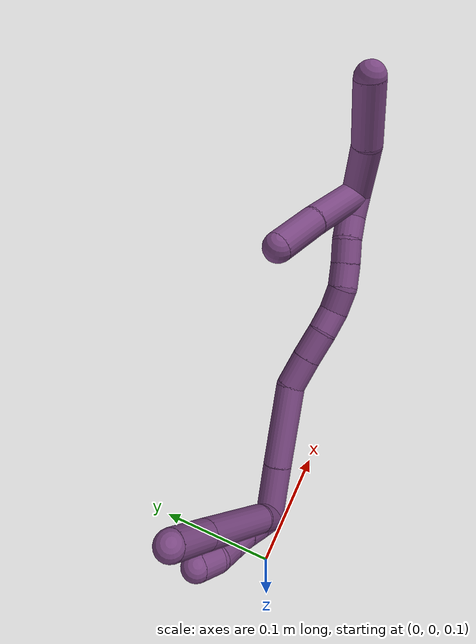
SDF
<sdf version="1.7">
 <world name="default">
  <model name="photoneo_s_sensor">
   <static>1</static>
   <pose>0 0 2 1.57079 1.57079 3.14159</pose>
   <link name="link">
    <inertial><mass>0.1</mass></inertial>
    <sensor name="sensor" type="depth">
     <update_rate>30</update_rate>
     <camera>
      <horizontal_fov>1.22</horizontal_fov>
      <image><width>1920</width><height>1200</height><format>B8G8R8</format></image>
      <clip><near>0.1</near><far>4</far></clip>
      <depth_camera><output>points</output></depth_camera>
     </camera>
     <plugin name="camera_plugin" filename="libgazebo_ros_depth_camera.so">
      <baseline>0.2</baseline>
      <alwaysOn>1</alwaysOn>
      <updateRate>0.0</updateRate>
      <cameraName>camera_ir</cameraName>
      <imageTopicName>/camera/color/image_raw</imageTopicName>
      <cameraInfoTopicName>/camera/color/camera_info</cameraInfoTopicName>
      <depthImageTopicName>/camera/depth/image_raw</depthImageTopicName>
      <depthImageCameraInfoTopicName>/camera/depth/camera_info</depthImageCameraInfoTopicName>
      <pointCloudTopicName>/camera/depth/points</pointCloudTopicName>
      <frameName>fr_optical</frameName>
      <pointCloudCutoff>0.1</pointCloudCutoff>
      <pointCloudCutoffMax>2.0</pointCloudCutoffMax>
      <distortionK1>0</distortionK1>
      <distortionK2>0</distortionK2>
      <distortionK3>0</distortionK3>
      <distortionT1>0</distortionT1>
      <distortionT2>0</distortionT2>
      <CxPrime>0</CxPrime>
      <Cx>0</Cx>
      <Cy>0</Cy>
      <focalLength>0</focalLength>
      <hackBaseline>0</hackBaseline>
     </plugin>
    </sensor>
   </link>
  </model>
  <model name="bin">
   <static>1</static>
   <link name="bottom">
    <collision name="collision-bottom">
     <pose>0 0 -0.01 0 -0 0</pose>
     <geometry><box><size>0.8 0.6 0.02</size></box></geometry>
     <surface>
      <friction><ode><mu>100</mu><mu2>100</mu2></ode></friction>
      <contact><collide_bitmask>65535</collide_bitmask></contact>
     </surface>
    </collision>
   </link>
   <link name="west_wall">
    <collision name="collision-west_wall">
     <pose>-0.41 0 0.1 0 -0 0</pose>
     <geometry><box><size>0.02 0.6 0.2</size></box></geometry>
     <surface>
      <friction><ode><mu>100</mu><mu2>100</mu2></ode></friction>
      <contact><collide_bitmask>65535</collide_bitmask></contact>
     </surface>
    </collision>
   </link>
   <link name="east_wall">
    <collision name="collision-east_wall">
     <pose>0.41 0 0.1 0 -0 0</pose>
     <geometry><box><size>0.02 0.6 0.2</size></box></geometry>
     <surface>
      <friction><ode><mu>100</mu><mu2>100</mu2></ode></friction>
      <contact><collide_bitmask>65535</collide_bitmask></contact>
     </surface>
    </collision>
   </link>
   <link name="south_wall">
    <collision name="collision-south_wall">
     <pose>0 -0.31 0.1 0 -0 0</pose>
     <geometry><box><size>0.8 0.02 0.2</size></box></geometry>
     <surface>
      <friction><ode><mu>100</mu><mu2>100</mu2></ode></friction>
      <contact><collide_bitmask>65535</collide_bitmask></contact>
     </surface>
    </collision>
   </link>
   <link name="north_wall">
    <collision name="collision-north_wall">
     <pose>0 0.31 0.1 0 -0 0</pose>
     <geometry><box><size>0.8 0.02 0.2</size></box></geometry>
     <surface>
      <friction><ode><mu>100</mu><mu2>100</mu2></ode></friction>
      <contact><collide_bitmask>65535</collide_bitmask></contact>
     </surface>
    </collision>
   </link>
  </model>
  <model name="20">
   <static>0</static>
   <link name="20">
    <collision name="collision-cylinder-e_1_2_8">
     <pose>-0.005534 0.005448 0.013054 -0.395387 -0.372891 0.075535</pose>
     <geometry><cylinder><radius>0.0125</radius><length>0.030379</length></cylinder></geometry>
     <surface>
      <friction><ode><mu>1.16</mu><mu2>1.16</mu2><slip1>0</slip1><slip2>0</slip2></ode></friction>
      <contact><ode><kp>1e+06</kp><kd>1</kd><max_vel>0</max_vel><min_depth>0.001</min_depth></ode></contact>
     </surface>
    </collision>
    <visual name="visual-cylinder-e_1_2_8">
     <pose>-0.005534 0.005448 0.013054 -0.395387 -0.372891 0.075535</pose>
     <geometry><cylinder><radius>0.0125</radius><length>0.030379</length></cylinder></geometry>
     <material><ambient>0.478431 0.278431 0.509804 1</ambient></material>
    </visual>
    <collision name="collision-cylinder-e_2_8_9">
     <pose>-0.031074 0.031222 0.053964 -0.630372 -0.525733 0.17503</pose>
     <geometry><cylinder><radius>0.0125</radius><length>0.079732</length></cylinder></geometry>
     <surface>
      <friction><ode><mu>1.16</mu><mu2>1.16</mu2><slip1>0</slip1><slip2>0</slip2></ode></friction>
      <contact><ode><kp>1e+06</kp><kd>1</kd><max_vel>0</max_vel><min_depth>0.001</min_depth></ode></contact>
     </surface>
    </collision>
    <visual name="visual-cylinder-e_2_8_9">
     <pose>-0.031074 0.031222 0.053964 -0.630372 -0.525733 0.17503</pose>
     <geometry><cylinder><radius>0.0125</radius><length>0.079732</length></cylinder></geometry>
     <material><ambient>0.478431 0.278431 0.509804 1</ambient></material>
    </visual>
    <collision name="collision-cylinder-e_3_9_6">
     <pose>-0.061149 0.061517 0.095855 -0.617574 -0.529192 0.172432</pose>
     <geometry><cylinder><radius>0.0125</radius><length>0.039889</length></cylinder></geometry>
     <surface>
      <friction><ode><mu>1.16</mu><mu2>1.16</mu2><slip1>0</slip1><slip2>0</slip2></ode></friction>
      <contact><ode><kp>1e+06</kp><kd>1</kd><max_vel>0</max_vel><min_depth>0.001</min_depth></ode></contact>
     </surface>
    </collision>
    <visual name="visual-cylinder-e_3_9_6">
     <pose>-0.061149 0.061517 0.095855 -0.617574 -0.529192 0.172432</pose>
     <geometry><cylinder><radius>0.0125</radius><length>0.039889</length></cylinder></geometry>
     <material><ambient>0.478431 0.278431 0.509804 1</ambient></material>
    </visual>
    <collision name="collision-cylinder-e_1_2_10">
     <pose>-0.006885 0.004745 0.005485 -0.713166 -0.759383 0.29514</pose>
     <geometry><cylinder><radius>0.0125</radius><length>0.02</length></cylinder></geometry>
     <surface>
      <friction><ode><mu>1.16</mu><mu2>1.16</mu2><slip1>0</slip1><slip2>0</slip2></ode></friction>
      <contact><ode><kp>1e+06</kp><kd>1</kd><max_vel>0</max_vel><min_depth>0.001</min_depth></ode></contact>
     </surface>
    </collision>
    <visual name="visual-cylinder-e_1_2_10">
     <pose>-0.006885 0.004745 0.005485 -0.713166 -0.759383 0.29514</pose>
     <geometry><cylinder><radius>0.0125</radius><length>0.02</length></cylinder></geometry>
     <material><ambient>0.478431 0.278431 0.509804 1</ambient></material>
    </visual>
    <collision name="collision-cylinder-e_2_10_11">
     <pose>-0.0204 0.014314 0.016695 -0.70027 -0.724836 0.275179</pose>
     <geometry><cylinder><radius>0.0125</radius><length>0.02</length></cylinder></geometry>
     <surface>
      <friction><ode><mu>1.16</mu><mu2>1.16</mu2><slip1>0</slip1><slip2>0</slip2></ode></friction>
      <contact><ode><kp>1e+06</kp><kd>1</kd><max_vel>0</max_vel><min_depth>0.001</min_depth></ode></contact>
     </surface>
    </collision>
    <visual name="visual-cylinder-e_2_10_11">
     <pose>-0.0204 0.014314 0.016695 -0.70027 -0.724836 0.275179</pose>
     <geometry><cylinder><radius>0.0125</radius><length>0.02</length></cylinder></geometry>
     <material><ambient>0.478431 0.278431 0.509804 1</ambient></material>
    </visual>
    <collision name="collision-cylinder-e_3_11_12">
     <pose>-0.034938 0.023647 0.026557 -0.82824 -0.912186 0.424764</pose>
     <geometry><cylinder><radius>0.0125</radius><length>0.02</length></cylinder></geometry>
     <surface>
      <friction><ode><mu>1.16</mu><mu2>1.16</mu2><slip1>0</slip1><slip2>0</slip2></ode></friction>
      <contact><ode><kp>1e+06</kp><kd>1</kd><max_vel>0</max_vel><min_depth>0.001</min_depth></ode></contact>
     </surface>
    </collision>
    <visual name="visual-cylinder-e_3_11_12">
     <pose>-0.034938 0.023647 0.026557 -0.82824 -0.912186 0.424764</pose>
     <geometry><cylinder><radius>0.0125</radius><length>0.02</length></cylinder></geometry>
     <material><ambient>0.478431 0.278431 0.509804 1</ambient></material>
    </visual>
    <collision name="collision-cylinder-e_4_12_13">
     <pose>-0.049623 0.031802 0.037082 -0.518781 -0.74457 0.206513</pose>
     <geometry><cylinder><radius>0.0125</radius><length>0.02</length></cylinder></geometry>
     <surface>
      <friction><ode><mu>1.16</mu><mu2>1.16</mu2><slip1>0</slip1><slip2>0</slip2></ode></friction>
      <contact><ode><kp>1e+06</kp><kd>1</kd><max_vel>0</max_vel><min_depth>0.001</min_depth></ode></contact>
     </surface>
    </collision>
    <visual name="visual-cylinder-e_4_12_13">
     <pose>-0.049623 0.031802 0.037082 -0.518781 -0.74457 0.206513</pose>
     <geometry><cylinder><radius>0.0125</radius><length>0.02</length></cylinder></geometry>
     <material><ambient>0.478431 0.278431 0.509804 1</ambient></material>
    </visual>
    <collision name="collision-cylinder-e_5_13_5">
     <pose>-0.062697 0.04178 0.047968 -0.952861 -0.681266 0.361849</pose>
     <geometry><cylinder><radius>0.0125</radius><length>0.02</length></cylinder></geometry>
     <surface>
      <friction><ode><mu>1.16</mu><mu2>1.16</mu2><slip1>0</slip1><slip2>0</slip2></ode></friction>
      <contact><ode><kp>1e+06</kp><kd>1</kd><max_vel>0</max_vel><min_depth>0.001</min_depth></ode></contact>
     </surface>
    </collision>
    <visual name="visual-cylinder-e_5_13_5">
     <pose>-0.062697 0.04178 0.047968 -0.952861 -0.681266 0.361849</pose>
     <geometry><cylinder><radius>0.0125</radius><length>0.02</length></cylinder></geometry>
     <material><ambient>0.478431 0.278431 0.509804 1</ambient></material>
    </visual>
    <collision name="collision-cylinder-e_1_2_14">
     <pose>0.01926 0.005294 0.015352 -0.332055 0.870303 -0.155483</pose>
     <geometry><cylinder><radius>0.0125</radius><length>0.050385</length></cylinder></geometry>
     <surface>
      <friction><ode><mu>1.16</mu><mu2>1.16</mu2><slip1>0</slip1><slip2>0</slip2></ode></friction>
      <contact><ode><kp>1e+06</kp><kd>1</kd><max_vel>0</max_vel><min_depth>0.001</min_depth></ode></contact>
     </surface>
    </collision>
    <visual name="visual-cylinder-e_1_2_14">
     <pose>0.01926 0.005294 0.015352 -0.332055 0.870303 -0.155483</pose>
     <geometry><cylinder><radius>0.0125</radius><length>0.050385</length></cylinder></geometry>
     <material><ambient>0.478431 0.278431 0.509804 1</ambient></material>
    </visual>
    <collision name="collision-cylinder-e_2_14_15">
     <pose>0.066937 0.017777 0.05196 -0.326152 0.902402 -0.159112</pose>
     <geometry><cylinder><radius>0.0125</radius><length>0.072416</length></cylinder></geometry>
     <surface>
      <friction><ode><mu>1.16</mu><mu2>1.16</mu2><slip1>0</slip1><slip2>0</slip2></ode></friction>
      <contact><ode><kp>1e+06</kp><kd>1</kd><max_vel>0</max_vel><min_depth>0.001</min_depth></ode></contact>
     </surface>
    </collision>
    <visual name="visual-cylinder-e_2_14_15">
     <pose>0.066937 0.017777 0.05196 -0.326152 0.902402 -0.159112</pose>
     <geometry><cylinder><radius>0.0125</radius><length>0.072416</length></cylinder></geometry>
     <material><ambient>0.478431 0.278431 0.509804 1</ambient></material>
    </visual>
    <collision name="collision-cylinder-e_3_15_16">
     <pose>0.105996 0.023014 0.082442 0.208544 0.84568 0.094113</pose>
     <geometry><cylinder><radius>0.0125</radius><length>0.028438</length></cylinder></geometry>
     <surface>
      <friction><ode><mu>1.16</mu><mu2>1.16</mu2><slip1>0</slip1><slip2>0</slip2></ode></friction>
      <contact><ode><kp>1e+06</kp><kd>1</kd><max_vel>0</max_vel><min_depth>0.001</min_depth></ode></contact>
     </surface>
    </collision>
    <visual name="visual-cylinder-e_3_15_16">
     <pose>0.105996 0.023014 0.082442 0.208544 0.84568 0.094113</pose>
     <geometry><cylinder><radius>0.0125</radius><length>0.028438</length></cylinder></geometry>
     <material><ambient>0.478431 0.278431 0.509804 1</ambient></material>
    </visual>
    <collision name="collision-cylinder-e_4_16_17">
     <pose>0.126461 0.018809 0.100205 0.258027 0.838651 0.115533</pose>
     <geometry><cylinder><radius>0.0125</radius><length>0.026416</length></cylinder></geometry>
     <surface>
      <friction><ode><mu>1.16</mu><mu2>1.16</mu2><slip1>0</slip1><slip2>0</slip2></ode></friction>
      <contact><ode><kp>1e+06</kp><kd>1</kd><max_vel>0</max_vel><min_depth>0.001</min_depth></ode></contact>
     </surface>
    </collision>
    <visual name="visual-cylinder-e_4_16_17">
     <pose>0.126461 0.018809 0.100205 0.258027 0.838651 0.115533</pose>
     <geometry><cylinder><radius>0.0125</radius><length>0.026416</length></cylinder></geometry>
     <material><ambient>0.478431 0.278431 0.509804 1</ambient></material>
    </visual>
    <collision name="collision-cylinder-e_5_17_18">
     <pose>0.144914 0.015137 0.11401 0.263088 1.00701 0.145509</pose>
     <geometry><cylinder><radius>0.0125</radius><length>0.020422</length></cylinder></geometry>
     <surface>
      <friction><ode><mu>1.16</mu><mu2>1.16</mu2><slip1>0</slip1><slip2>0</slip2></ode></friction>
      <contact><ode><kp>1e+06</kp><kd>1</kd><max_vel>0</max_vel><min_depth>0.001</min_depth></ode></contact>
     </surface>
    </collision>
    <visual name="visual-cylinder-e_5_17_18">
     <pose>0.144914 0.015137 0.11401 0.263088 1.00701 0.145509</pose>
     <geometry><cylinder><radius>0.0125</radius><length>0.020422</length></cylinder></geometry>
     <material><ambient>0.478431 0.278431 0.509804 1</ambient></material>
    </visual>
    <collision name="collision-cylinder-e_6_18_19">
     <pose>0.160669 0.013959 0.127163 -0.0306 0.734571 -0.011774</pose>
     <geometry><cylinder><radius>0.0125</radius><length>0.021256</length></cylinder></geometry>
     <surface>
      <friction><ode><mu>1.16</mu><mu2>1.16</mu2><slip1>0</slip1><slip2>0</slip2></ode></friction>
      <contact><ode><kp>1e+06</kp><kd>1</kd><max_vel>0</max_vel><min_depth>0.001</min_depth></ode></contact>
     </surface>
    </collision>
    <visual name="visual-cylinder-e_6_18_19">
     <pose>0.160669 0.013959 0.127163 -0.0306 0.734571 -0.011774</pose>
     <geometry><cylinder><radius>0.0125</radius><length>0.021256</length></cylinder></geometry>
     <material><ambient>0.478431 0.278431 0.509804 1</ambient></material>
    </visual>
    <collision name="collision-cylinder-e_7_19_20">
     <pose>0.17605 0.016609 0.14042 -0.421427 0.951303 -0.219461</pose>
     <geometry><cylinder><radius>0.0125</radius><length>0.020286</length></cylinder></geometry>
     <surface>
      <friction><ode><mu>1.16</mu><mu2>1.16</mu2><slip1>0</slip1><slip2>0</slip2></ode></friction>
      <contact><ode><kp>1e+06</kp><kd>1</kd><max_vel>0</max_vel><min_depth>0.001</min_depth></ode></contact>
     </surface>
    </collision>
    <visual name="visual-cylinder-e_7_19_20">
     <pose>0.17605 0.016609 0.14042 -0.421427 0.951303 -0.219461</pose>
     <geometry><cylinder><radius>0.0125</radius><length>0.020286</length></cylinder></geometry>
     <material><ambient>0.478431 0.278431 0.509804 1</ambient></material>
    </visual>
    <collision name="collision-cylinder-e_8_20_21">
     <pose>0.192195 0.022085 0.151294 -0.508668 0.896949 -0.248883</pose>
     <geometry><cylinder><radius>0.0125</radius><length>0.020184</length></cylinder></geometry>
     <surface>
      <friction><ode><mu>1.16</mu><mu2>1.16</mu2><slip1>0</slip1><slip2>0</slip2></ode></friction>
      <contact><ode><kp>1e+06</kp><kd>1</kd><max_vel>0</max_vel><min_depth>0.001</min_depth></ode></contact>
     </surface>
    </collision>
    <visual name="visual-cylinder-e_8_20_21">
     <pose>0.192195 0.022085 0.151294 -0.508668 0.896949 -0.248883</pose>
     <geometry><cylinder><radius>0.0125</radius><length>0.020184</length></cylinder></geometry>
     <material><ambient>0.478431 0.278431 0.509804 1</ambient></material>
    </visual>
    <collision name="collision-cylinder-e_9_21_22">
     <pose>0.209096 0.026939 0.160748 -0.424506 1.12226 -0.269253</pose>
     <geometry><cylinder><radius>0.0125</radius><length>0.02001</length></cylinder></geometry>
     <surface>
      <friction><ode><mu>1.16</mu><mu2>1.16</mu2><slip1>0</slip1><slip2>0</slip2></ode></friction>
      <contact><ode><kp>1e+06</kp><kd>1</kd><max_vel>0</max_vel><min_depth>0.001</min_depth></ode></contact>
     </surface>
    </collision>
    <visual name="visual-cylinder-e_9_21_22">
     <pose>0.209096 0.026939 0.160748 -0.424506 1.12226 -0.269253</pose>
     <geometry><cylinder><radius>0.0125</radius><length>0.02001</length></cylinder></geometry>
     <material><ambient>0.478431 0.278431 0.509804 1</ambient></material>
    </visual>
    <collision name="collision-cylinder-e_10_22_1">
     <pose>0.225883 0.03021 0.17097 -0.232467 0.878696 -0.10964</pose>
     <geometry><cylinder><radius>0.0125</radius><length>0.020188</length></cylinder></geometry>
     <surface>
      <friction><ode><mu>1.16</mu><mu2>1.16</mu2><slip1>0</slip1><slip2>0</slip2></ode></friction>
      <contact><ode><kp>1e+06</kp><kd>1</kd><max_vel>0</max_vel><min_depth>0.001</min_depth></ode></contact>
     </surface>
    </collision>
    <visual name="visual-cylinder-e_10_22_1">
     <pose>0.225883 0.03021 0.17097 -0.232467 0.878696 -0.10964</pose>
     <geometry><cylinder><radius>0.0125</radius><length>0.020188</length></cylinder></geometry>
     <material><ambient>0.478431 0.278431 0.509804 1</ambient></material>
    </visual>
    <collision name="collision-cylinder-e_1_1_23">
     <pose>0.235784 0.035638 0.201111 -0.163709 0.087807 -0.007208</pose>
     <geometry><cylinder><radius>0.0125</radius><length>0.048581</length></cylinder></geometry>
     <surface>
      <friction><ode><mu>1.16</mu><mu2>1.16</mu2><slip1>0</slip1><slip2>0</slip2></ode></friction>
      <contact><ode><kp>1e+06</kp><kd>1</kd><max_vel>0</max_vel><min_depth>0.001</min_depth></ode></contact>
     </surface>
    </collision>
    <visual name="visual-cylinder-e_1_1_23">
     <pose>0.235784 0.035638 0.201111 -0.163709 0.087807 -0.007208</pose>
     <geometry><cylinder><radius>0.0125</radius><length>0.048581</length></cylinder></geometry>
     <material><ambient>0.478431 0.278431 0.509804 1</ambient></material>
    </visual>
    <collision name="collision-cylinder-e_2_23_4">
     <pose>0.242986 0.047901 0.248776 -0.336415 0.198564 -0.033827</pose>
     <geometry><cylinder><radius>0.0125</radius><length>0.051419</length></cylinder></geometry>
     <surface>
      <friction><ode><mu>1.16</mu><mu2>1.16</mu2><slip1>0</slip1><slip2>0</slip2></ode></friction>
      <contact><ode><kp>1e+06</kp><kd>1</kd><max_vel>0</max_vel><min_depth>0.001</min_depth></ode></contact>
     </surface>
    </collision>
    <visual name="visual-cylinder-e_2_23_4">
     <pose>0.242986 0.047901 0.248776 -0.336415 0.198564 -0.033827</pose>
     <geometry><cylinder><radius>0.0125</radius><length>0.051419</length></cylinder></geometry>
     <material><ambient>0.478431 0.278431 0.509804 1</ambient></material>
    </visual>
    <collision name="collision-cylinder-e_1_1_24">
     <pose>0.207834 0.044635 0.180556 -1.3198 -1.09333 0.882288</pose>
     <geometry><cylinder><radius>0.0125</radius><length>0.058144</length></cylinder></geometry>
     <surface>
      <friction><ode><mu>1.16</mu><mu2>1.16</mu2><slip1>0</slip1><slip2>0</slip2></ode></friction>
      <contact><ode><kp>1e+06</kp><kd>1</kd><max_vel>0</max_vel><min_depth>0.001</min_depth></ode></contact>
     </surface>
    </collision>
    <visual name="visual-cylinder-e_1_1_24">
     <pose>0.207834 0.044635 0.180556 -1.3198 -1.09333 0.882288</pose>
     <geometry><cylinder><radius>0.0125</radius><length>0.058144</length></cylinder></geometry>
     <material><ambient>0.478431 0.278431 0.509804 1</ambient></material>
    </visual>
    <collision name="collision-cylinder-e_2_24_3">
     <pose>0.163192 0.06671 0.184463 -1.50643 -1.11815 1.06107</pose>
     <geometry><cylinder><radius>0.0125</radius><length>0.041856</length></cylinder></geometry>
     <surface>
      <friction><ode><mu>1.16</mu><mu2>1.16</mu2><slip1>0</slip1><slip2>0</slip2></ode></friction>
      <contact><ode><kp>1e+06</kp><kd>1</kd><max_vel>0</max_vel><min_depth>0.001</min_depth></ode></contact>
     </surface>
    </collision>
    <visual name="visual-cylinder-e_2_24_3">
     <pose>0.163192 0.06671 0.184463 -1.50643 -1.11815 1.06107</pose>
     <geometry><cylinder><radius>0.0125</radius><length>0.041856</length></cylinder></geometry>
     <material><ambient>0.478431 0.278431 0.509804 1</ambient></material>
    </visual>
    <collision name="collision-sphere-3">
     <pose>0.144372 0.075843 0.185052 0 -0 0</pose>
     <geometry><sphere><radius>0.0125</radius></sphere></geometry>
     <surface>
      <friction><ode><mu>1.16</mu><mu2>1.16</mu2><slip1>0</slip1><slip2>0</slip2></ode></friction>
      <contact><ode><kp>1e+06</kp><kd>1</kd><max_vel>0</max_vel><min_depth>0.001</min_depth></ode></contact>
     </surface>
    </collision>
    <visual name="visual-sphere-3">
     <pose>0.144372 0.075843 0.185052 0 -0 0</pose>
     <geometry><sphere><radius>0.0125</radius></sphere></geometry>
     <material><ambient>0.478431 0.278431 0.509804 1</ambient></material>
    </visual>
    <collision name="collision-sphere-24">
     <pose>0.182013 0.057576 0.183874 0 -0 0</pose>
     <geometry><sphere><radius>0.0125</radius></sphere></geometry>
     <surface>
      <friction><ode><mu>1.16</mu><mu2>1.16</mu2><slip1>0</slip1><slip2>0</slip2></ode></friction>
      <contact><ode><kp>1e+06</kp><kd>1</kd><max_vel>0</max_vel><min_depth>0.001</min_depth></ode></contact>
     </surface>
    </collision>
    <visual name="visual-sphere-24">
     <pose>0.182013 0.057576 0.183874 0 -0 0</pose>
     <geometry><sphere><radius>0.0125</radius></sphere></geometry>
     <material><ambient>0.478431 0.278431 0.509804 1</ambient></material>
    </visual>
    <collision name="collision-sphere-4">
     <pose>0.248058 0.056221 0.272568 0 -0 0</pose>
     <geometry><sphere><radius>0.0125</radius></sphere></geometry>
     <surface>
      <friction><ode><mu>1.16</mu><mu2>1.16</mu2><slip1>0</slip1><slip2>0</slip2></ode></friction>
      <contact><ode><kp>1e+06</kp><kd>1</kd><max_vel>0</max_vel><min_depth>0.001</min_depth></ode></contact>
     </surface>
    </collision>
    <visual name="visual-sphere-4">
     <pose>0.248058 0.056221 0.272568 0 -0 0</pose>
     <geometry><sphere><radius>0.0125</radius></sphere></geometry>
     <material><ambient>0.478431 0.278431 0.509804 1</ambient></material>
    </visual>
    <collision name="collision-sphere-23">
     <pose>0.237914 0.039581 0.224985 0 -0 0</pose>
     <geometry><sphere><radius>0.0125</radius></sphere></geometry>
     <surface>
      <friction><ode><mu>1.16</mu><mu2>1.16</mu2><slip1>0</slip1><slip2>0</slip2></ode></friction>
      <contact><ode><kp>1e+06</kp><kd>1</kd><max_vel>0</max_vel><min_depth>0.001</min_depth></ode></contact>
     </surface>
    </collision>
    <visual name="visual-sphere-23">
     <pose>0.237914 0.039581 0.224985 0 -0 0</pose>
     <geometry><sphere><radius>0.0125</radius></sphere></geometry>
     <material><ambient>0.478431 0.278431 0.509804 1</ambient></material>
    </visual>
    <collision name="collision-sphere-1">
     <pose>0.233654 0.031694 0.177238 0 -0 0</pose>
     <geometry><sphere><radius>0.0125</radius></sphere></geometry>
     <surface>
      <friction><ode><mu>1.16</mu><mu2>1.16</mu2><slip1>0</slip1><slip2>0</slip2></ode></friction>
      <contact><ode><kp>1e+06</kp><kd>1</kd><max_vel>0</max_vel><min_depth>0.001</min_depth></ode></contact>
     </surface>
    </collision>
    <visual name="visual-sphere-1">
     <pose>0.233654 0.031694 0.177238 0 -0 0</pose>
     <geometry><sphere><radius>0.0125</radius></sphere></geometry>
     <material><ambient>0.478431 0.278431 0.509804 1</ambient></material>
    </visual>
    <collision name="collision-sphere-22">
     <pose>0.218111 0.028726 0.164702 0 -0 0</pose>
     <geometry><sphere><radius>0.0125</radius></sphere></geometry>
     <surface>
      <friction><ode><mu>1.16</mu><mu2>1.16</mu2><slip1>0</slip1><slip2>0</slip2></ode></friction>
      <contact><ode><kp>1e+06</kp><kd>1</kd><max_vel>0</max_vel><min_depth>0.001</min_depth></ode></contact>
     </surface>
    </collision>
    <visual name="visual-sphere-22">
     <pose>0.218111 0.028726 0.164702 0 -0 0</pose>
     <geometry><sphere><radius>0.0125</radius></sphere></geometry>
     <material><ambient>0.478431 0.278431 0.509804 1</ambient></material>
    </visual>
    <collision name="collision-sphere-21">
     <pose>0.200081 0.025152 0.156794 0 -0 0</pose>
     <geometry><sphere><radius>0.0125</radius></sphere></geometry>
     <surface>
      <friction><ode><mu>1.16</mu><mu2>1.16</mu2><slip1>0</slip1><slip2>0</slip2></ode></friction>
      <contact><ode><kp>1e+06</kp><kd>1</kd><max_vel>0</max_vel><min_depth>0.001</min_depth></ode></contact>
     </surface>
    </collision>
    <visual name="visual-sphere-21">
     <pose>0.200081 0.025152 0.156794 0 -0 0</pose>
     <geometry><sphere><radius>0.0125</radius></sphere></geometry>
     <material><ambient>0.478431 0.278431 0.509804 1</ambient></material>
    </visual>
    <collision name="collision-sphere-11">
     <pose>-0.02703 0.019138 0.022419 0 -0 0</pose>
     <geometry><sphere><radius>0.0125</radius></sphere></geometry>
     <surface>
      <friction><ode><mu>1.16</mu><mu2>1.16</mu2><slip1>0</slip1><slip2>0</slip2></ode></friction>
      <contact><ode><kp>1e+06</kp><kd>1</kd><max_vel>0</max_vel><min_depth>0.001</min_depth></ode></contact>
     </surface>
    </collision>
    <visual name="visual-sphere-11">
     <pose>-0.02703 0.019138 0.022419 0 -0 0</pose>
     <geometry><sphere><radius>0.0125</radius></sphere></geometry>
     <material><ambient>0.478431 0.278431 0.509804 1</ambient></material>
    </visual>
    <collision name="collision-sphere-10">
     <pose>-0.013769 0.00949 0.01097 0 -0 0</pose>
     <geometry><sphere><radius>0.0125</radius></sphere></geometry>
     <surface>
      <friction><ode><mu>1.16</mu><mu2>1.16</mu2><slip1>0</slip1><slip2>0</slip2></ode></friction>
      <contact><ode><kp>1e+06</kp><kd>1</kd><max_vel>0</max_vel><min_depth>0.001</min_depth></ode></contact>
     </surface>
    </collision>
    <visual name="visual-sphere-10">
     <pose>-0.013769 0.00949 0.01097 0 -0 0</pose>
     <geometry><sphere><radius>0.0125</radius></sphere></geometry>
     <material><ambient>0.478431 0.278431 0.509804 1</ambient></material>
    </visual>
    <collision name="collision-sphere-6">
     <pose>-0.071218 0.071486 0.109891 0 -0 0</pose>
     <geometry><sphere><radius>0.0125</radius></sphere></geometry>
     <surface>
      <friction><ode><mu>1.16</mu><mu2>1.16</mu2><slip1>0</slip1><slip2>0</slip2></ode></friction>
      <contact><ode><kp>1e+06</kp><kd>1</kd><max_vel>0</max_vel><min_depth>0.001</min_depth></ode></contact>
     </surface>
    </collision>
    <visual name="visual-sphere-6">
     <pose>-0.071218 0.071486 0.109891 0 -0 0</pose>
     <geometry><sphere><radius>0.0125</radius></sphere></geometry>
     <material><ambient>0.478431 0.278431 0.509804 1</ambient></material>
    </visual>
    <collision name="collision-sphere-9">
     <pose>-0.051081 0.051548 0.081819 0 -0 0</pose>
     <geometry><sphere><radius>0.0125</radius></sphere></geometry>
     <surface>
      <friction><ode><mu>1.16</mu><mu2>1.16</mu2><slip1>0</slip1><slip2>0</slip2></ode></friction>
      <contact><ode><kp>1e+06</kp><kd>1</kd><max_vel>0</max_vel><min_depth>0.001</min_depth></ode></contact>
     </surface>
    </collision>
    <visual name="visual-sphere-9">
     <pose>-0.051081 0.051548 0.081819 0 -0 0</pose>
     <geometry><sphere><radius>0.0125</radius></sphere></geometry>
     <material><ambient>0.478431 0.278431 0.509804 1</ambient></material>
    </visual>
    <collision name="collision-sphere-2">
     <geometry><sphere><radius>0.0125</radius></sphere></geometry>
     <surface>
      <friction><ode><mu>1.16</mu><mu2>1.16</mu2><slip1>0</slip1><slip2>0</slip2></ode></friction>
      <contact><ode><kp>1e+06</kp><kd>1</kd><max_vel>0</max_vel><min_depth>0.001</min_depth></ode></contact>
     </surface>
    </collision>
    <visual name="visual-sphere-2">
     <geometry><sphere><radius>0.0125</radius></sphere></geometry>
     <material><ambient>0.478431 0.278431 0.509804 1</ambient></material>
    </visual>
    <collision name="collision-sphere-19">
     <pose>0.167792 0.0142 0.135046 0 -0 0</pose>
     <geometry><sphere><radius>0.0125</radius></sphere></geometry>
     <surface>
      <friction><ode><mu>1.16</mu><mu2>1.16</mu2><slip1>0</slip1><slip2>0</slip2></ode></friction>
      <contact><ode><kp>1e+06</kp><kd>1</kd><max_vel>0</max_vel><min_depth>0.001</min_depth></ode></contact>
     </surface>
    </collision>
    <visual name="visual-sphere-19">
     <pose>0.167792 0.0142 0.135046 0 -0 0</pose>
     <geometry><sphere><radius>0.0125</radius></sphere></geometry>
     <material><ambient>0.478431 0.278431 0.509804 1</ambient></material>
    </visual>
    <collision name="collision-sphere-8">
     <pose>-0.011067 0.010897 0.026109 0 -0 0</pose>
     <geometry><sphere><radius>0.0125</radius></sphere></geometry>
     <surface>
      <friction><ode><mu>1.16</mu><mu2>1.16</mu2><slip1>0</slip1><slip2>0</slip2></ode></friction>
      <contact><ode><kp>1e+06</kp><kd>1</kd><max_vel>0</max_vel><min_depth>0.001</min_depth></ode></contact>
     </surface>
    </collision>
    <visual name="visual-sphere-8">
     <pose>-0.011067 0.010897 0.026109 0 -0 0</pose>
     <geometry><sphere><radius>0.0125</radius></sphere></geometry>
     <material><ambient>0.478431 0.278431 0.509804 1</ambient></material>
    </visual>
    <collision name="collision-sphere-12">
     <pose>-0.042847 0.028156 0.030696 0 -0 0</pose>
     <geometry><sphere><radius>0.0125</radius></sphere></geometry>
     <surface>
      <friction><ode><mu>1.16</mu><mu2>1.16</mu2><slip1>0</slip1><slip2>0</slip2></ode></friction>
      <contact><ode><kp>1e+06</kp><kd>1</kd><max_vel>0</max_vel><min_depth>0.001</min_depth></ode></contact>
     </surface>
    </collision>
    <visual name="visual-sphere-12">
     <pose>-0.042847 0.028156 0.030696 0 -0 0</pose>
     <geometry><sphere><radius>0.0125</radius></sphere></geometry>
     <material><ambient>0.478431 0.278431 0.509804 1</ambient></material>
    </visual>
    <collision name="collision-sphere-13">
     <pose>-0.0564 0.035449 0.043468 0 -0 0</pose>
     <geometry><sphere><radius>0.0125</radius></sphere></geometry>
     <surface>
      <friction><ode><mu>1.16</mu><mu2>1.16</mu2><slip1>0</slip1><slip2>0</slip2></ode></friction>
      <contact><ode><kp>1e+06</kp><kd>1</kd><max_vel>0</max_vel><min_depth>0.001</min_depth></ode></contact>
     </surface>
    </collision>
    <visual name="visual-sphere-13">
     <pose>-0.0564 0.035449 0.043468 0 -0 0</pose>
     <geometry><sphere><radius>0.0125</radius></sphere></geometry>
     <material><ambient>0.478431 0.278431 0.509804 1</ambient></material>
    </visual>
    <collision name="collision-sphere-5">
     <pose>-0.068995 0.048111 0.052469 0 -0 0</pose>
     <geometry><sphere><radius>0.0125</radius></sphere></geometry>
     <surface>
      <friction><ode><mu>1.16</mu><mu2>1.16</mu2><slip1>0</slip1><slip2>0</slip2></ode></friction>
      <contact><ode><kp>1e+06</kp><kd>1</kd><max_vel>0</max_vel><min_depth>0.001</min_depth></ode></contact>
     </surface>
    </collision>
    <visual name="visual-sphere-5">
     <pose>-0.068995 0.048111 0.052469 0 -0 0</pose>
     <geometry><sphere><radius>0.0125</radius></sphere></geometry>
     <material><ambient>0.478431 0.278431 0.509804 1</ambient></material>
    </visual>
    <collision name="collision-sphere-14">
     <pose>0.03852 0.010587 0.030704 0 -0 0</pose>
     <geometry><sphere><radius>0.0125</radius></sphere></geometry>
     <surface>
      <friction><ode><mu>1.16</mu><mu2>1.16</mu2><slip1>0</slip1><slip2>0</slip2></ode></friction>
      <contact><ode><kp>1e+06</kp><kd>1</kd><max_vel>0</max_vel><min_depth>0.001</min_depth></ode></contact>
     </surface>
    </collision>
    <visual name="visual-sphere-14">
     <pose>0.03852 0.010587 0.030704 0 -0 0</pose>
     <geometry><sphere><radius>0.0125</radius></sphere></geometry>
     <material><ambient>0.478431 0.278431 0.509804 1</ambient></material>
    </visual>
    <collision name="collision-sphere-15">
     <pose>0.095354 0.024966 0.073216 0 -0 0</pose>
     <geometry><sphere><radius>0.0125</radius></sphere></geometry>
     <surface>
      <friction><ode><mu>1.16</mu><mu2>1.16</mu2><slip1>0</slip1><slip2>0</slip2></ode></friction>
      <contact><ode><kp>1e+06</kp><kd>1</kd><max_vel>0</max_vel><min_depth>0.001</min_depth></ode></contact>
     </surface>
    </collision>
    <visual name="visual-sphere-15">
     <pose>0.095354 0.024966 0.073216 0 -0 0</pose>
     <geometry><sphere><radius>0.0125</radius></sphere></geometry>
     <material><ambient>0.478431 0.278431 0.509804 1</ambient></material>
    </visual>
    <collision name="collision-sphere-16">
     <pose>0.116637 0.021061 0.091668 0 -0 0</pose>
     <geometry><sphere><radius>0.0125</radius></sphere></geometry>
     <surface>
      <friction><ode><mu>1.16</mu><mu2>1.16</mu2><slip1>0</slip1><slip2>0</slip2></ode></friction>
      <contact><ode><kp>1e+06</kp><kd>1</kd><max_vel>0</max_vel><min_depth>0.001</min_depth></ode></contact>
     </surface>
    </collision>
    <visual name="visual-sphere-16">
     <pose>0.116637 0.021061 0.091668 0 -0 0</pose>
     <geometry><sphere><radius>0.0125</radius></sphere></geometry>
     <material><ambient>0.478431 0.278431 0.509804 1</ambient></material>
    </visual>
    <collision name="collision-sphere-17">
     <pose>0.136284 0.016556 0.108741 0 -0 0</pose>
     <geometry><sphere><radius>0.0125</radius></sphere></geometry>
     <surface>
      <friction><ode><mu>1.16</mu><mu2>1.16</mu2><slip1>0</slip1><slip2>0</slip2></ode></friction>
      <contact><ode><kp>1e+06</kp><kd>1</kd><max_vel>0</max_vel><min_depth>0.001</min_depth></ode></contact>
     </surface>
    </collision>
    <visual name="visual-sphere-17">
     <pose>0.136284 0.016556 0.108741 0 -0 0</pose>
     <geometry><sphere><radius>0.0125</radius></sphere></geometry>
     <material><ambient>0.478431 0.278431 0.509804 1</ambient></material>
    </visual>
    <collision name="collision-sphere-18">
     <pose>0.153545 0.013718 0.119279 0 -0 0</pose>
     <geometry><sphere><radius>0.0125</radius></sphere></geometry>
     <surface>
      <friction><ode><mu>1.16</mu><mu2>1.16</mu2><slip1>0</slip1><slip2>0</slip2></ode></friction>
      <contact><ode><kp>1e+06</kp><kd>1</kd><max_vel>0</max_vel><min_depth>0.001</min_depth></ode></contact>
     </surface>
    </collision>
    <visual name="visual-sphere-18">
     <pose>0.153545 0.013718 0.119279 0 -0 0</pose>
     <geometry><sphere><radius>0.0125</radius></sphere></geometry>
     <material><ambient>0.478431 0.278431 0.509804 1</ambient></material>
    </visual>
    <collision name="collision-sphere-20">
     <pose>0.184309 0.019018 0.145794 0 -0 0</pose>
     <geometry><sphere><radius>0.0125</radius></sphere></geometry>
     <surface>
      <friction><ode><mu>1.16</mu><mu2>1.16</mu2><slip1>0</slip1><slip2>0</slip2></ode></friction>
      <contact><ode><kp>1e+06</kp><kd>1</kd><max_vel>0</max_vel><min_depth>0.001</min_depth></ode></contact>
     </surface>
    </collision>
    <visual name="visual-sphere-20">
     <pose>0.184309 0.019018 0.145794 0 -0 0</pose>
     <geometry><sphere><radius>0.0125</radius></sphere></geometry>
     <material><ambient>0.478431 0.278431 0.509804 1</ambient></material>
    </visual>
    <inertial>
     <pose>0.09204 0.029679 0.105479 0 -0 0</pose>
     <mass>0.75</mass>
     <inertia><ixx>0.000138</ixx><ixy>0</ixy><ixz>0</ixz><iyy>0.00019</iyy><iyz>0</iyz><izz>-2e-05</izz></inertia>
    </inertial>
   </link>
   <pose>0.039825 0.014599 0.122969 0.041168 0.432546 0.083333</pose>
  </model>
 </world>
</sdf>
